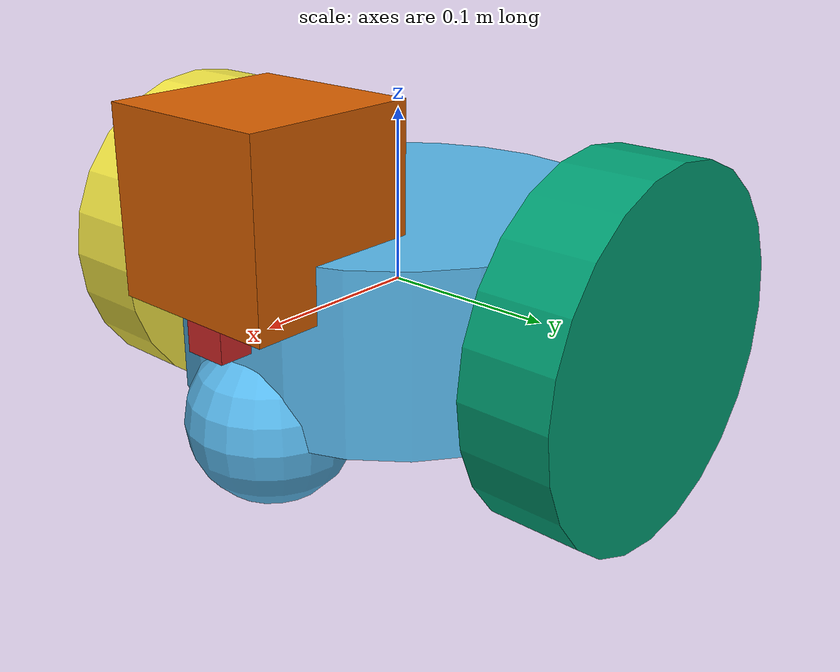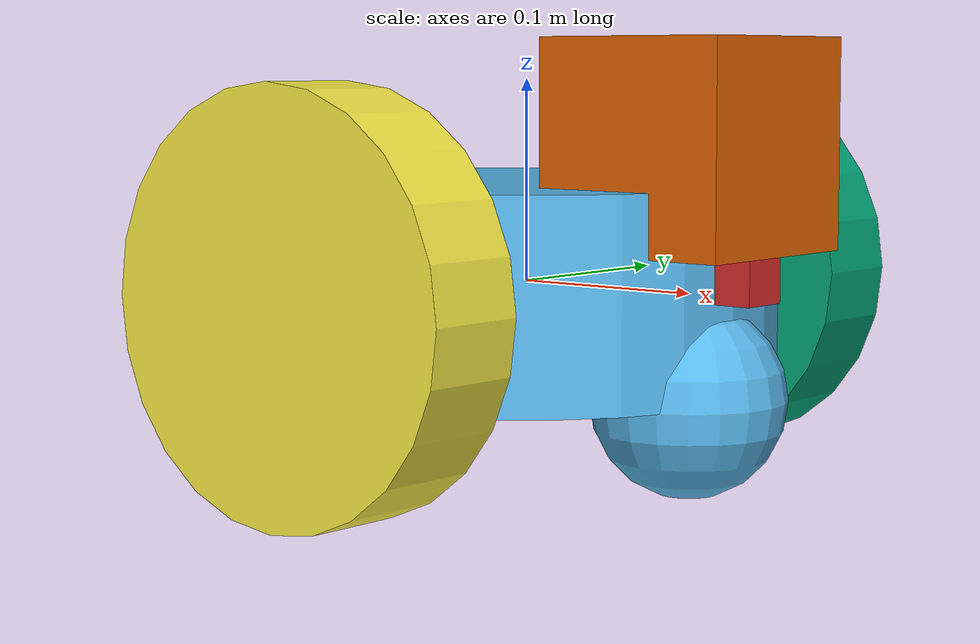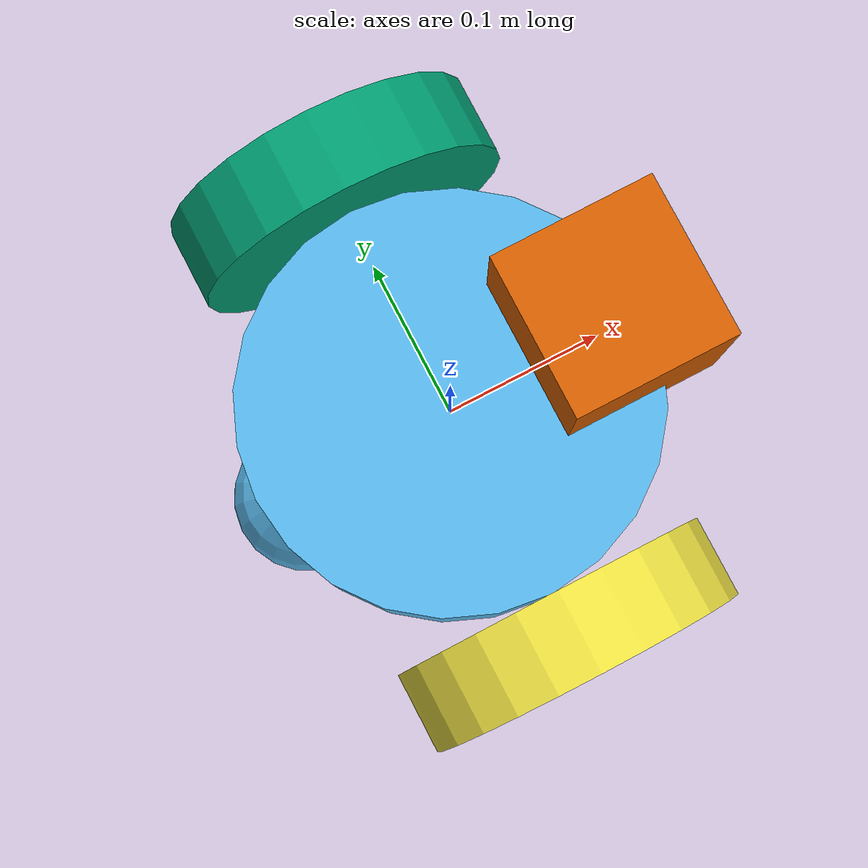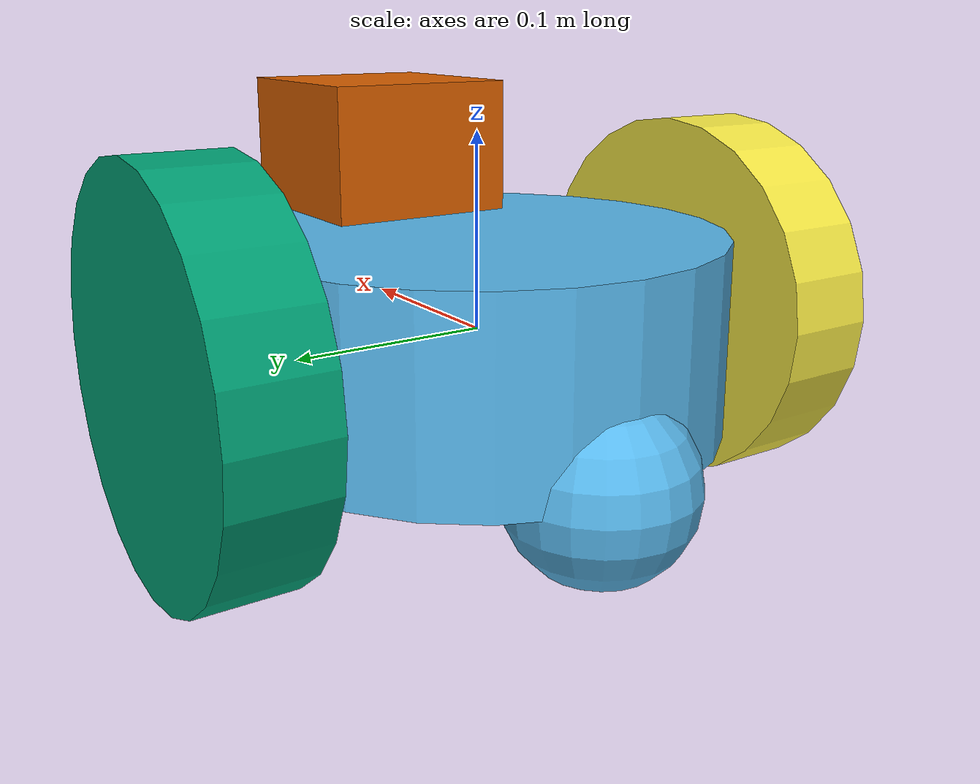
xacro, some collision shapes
<?xml version='1.0'?>

<robot name="udacity_bot" xmlns:xacro="http://www.ros.org/wiki/xacro">
  <xacro:include filename="$(find udacity_bot)/urdf/ramzy_bot.gazebo" />
  <link name="robot_footprint"></link>

  <joint name="robot_footprint_joint" type="fixed">
    <origin xyz="0 0 0" rpy="0 0 0" />
    <parent link="robot_footprint"/>
    <child link="chassis" />
  </joint>

  <link name='chassis'>
    <pose>0 0 0.1 0 0 0</pose>

    <inertial>
      <mass value="15.0"/>
      <origin xyz="0.0 0 0" rpy=" 0 0 0"/>
      <inertia
          ixx="0.1" ixy="0" ixz="0"
          iyy="0.1" iyz="0"
          izz="0.1"
      />
    </inertial>

    <collision name='collision'>
      <origin xyz="0 0 0" rpy=" 0 0 0"/>
      <geometry>
        <cylinder length="0.1" radius="0.125"/>
      </geometry>
    </collision>

    <visual name='chassis_visual'>
      <origin xyz="0 0 0" rpy=" 0 0 0"/>
      <geometry>
        <cylinder length="0.1" radius="0.125"/>
      </geometry>
    </visual>

    <collision name='back_caster_collision'>
      <origin xyz="-0.1 0 -0.05" rpy=" 0 0 0"/>
      <geometry>
        <sphere radius="0.047"/>
      </geometry>
    </collision>

    <visual name='back_caster_visual'>
      <origin xyz="-0.1 0 -0.05" rpy=" 0 0 0"/>
      <geometry>
        <sphere radius="0.047"/>
      </geometry>
    </visual>

    <collision name='front_caster_collision'>
      <origin xyz="0.1 0 -0.05" rpy=" 0 0 0"/>
      <geometry>
        <sphere radius="0.047"/>
      </geometry>
    </collision>

    <visual name='front_caster_visual'>
      <origin xyz="0.1 0 -0.05" rpy=" 0 0 0"/>
      <geometry>
        <sphere radius="0.047"/>
      </geometry>
    </visual>

  </link>
    <link name="left_wheel">
    <inertial>
      <mass value="5.0"/>
      <origin xyz="0.0 0 0" rpy=" 0 1.5707 1.5707"/>
      <inertia
          ixx="0.1" ixy="0" ixz="0"
          iyy="0.1" iyz="0"
          izz="0.1"
      />
    </inertial>

    <collision name='collision'>
      <origin xyz="0.0 0 0" rpy=" 0 1.5707 1.5707"/>
      <geometry>
        <cylinder radius="0.1" length="0.05"/>
      </geometry>
    </collision>

    <visual name='left_wheel_visual'>
      <origin xyz="0.0 0 0" rpy=" 0 1.5707 1.5707"/>
      <geometry>
        <cylinder radius="0.1" length="0.05"/>
      </geometry>
    </visual>
  </link>

  <joint type="continuous" name="left_wheel_hinge">
    <origin xyz="0 0.15 0" rpy="0 0 0"/>
    <child link="left_wheel"/>
    <parent link="chassis"/>
    <axis xyz="0 1 0" rpy="0 0 0"/>
    <limit effort="10000" velocity="1000"/>
    <dynamics damping="1.0" friction="1.0"/>
  </joint>

  <link name="right_wheel">
    <inertial>
      <mass value="5.0"/>
      <origin xyz="0.0 0 0" rpy=" 0 1.5707 1.5707"/>
      <inertia
          ixx="0.1" ixy="0" ixz="0"
          iyy="0.1" iyz="0"
          izz="0.1"
      />
    </inertial>

    <collision name='collision'>
      <origin xyz="0.0 0 0" rpy=" 0 1.5707 1.5707"/>
      <geometry>
        <cylinder radius="0.1" length="0.05"/>
      </geometry>
    </collision>

    <visual name='right_wheel_visual'>
      <origin xyz="0.0 0 0" rpy=" 0 1.5707 1.5707"/>
      <geometry>
        <cylinder radius="0.1" length="0.05"/>
      </geometry>
    </visual>
  </link>

  <joint type="continuous" name="right_wheel_hinge">
    <origin xyz="0 -0.15 0" rpy="0 0 0"/>
    <child link="right_wheel"/>
    <parent link="chassis"/>
    <axis xyz="0 1 0" rpy="0 0 0"/>
    <limit effort="10000" velocity="1000"/>
    <dynamics damping="1.0" friction="1.0"/>
  </joint>

  <link name="camera">
    <inertial>
      <origin xyz="-0.07 0.01 0" rpy="0 0 0" />
      <mass value="0.1" />
      <inertia
          ixx="1e-6" ixy="0" ixz="0"
          iyy="1e-6" iyz="0"
          izz="1e-6"
      />
    </inertial>
    <collision name="camera_collision">
        <origin xyz="-0.07 0 0.01" rpy="0 0 0" />
        <geometry>
        <box size= "0.025 0.025 0.025" />
        </geometry>
    </collision>
    <visual name="camera_visual">
        <origin xyz="-0.07 0 0.01" rpy="0 0 0" />
        <geometry>
        <box size= "0.025 0.025 0.025" />
        </geometry>
    </visual>
  </link>
  <joint name="camera_joint" type="fixed">
  <origin xyz="0.2 0 0" rpy="0 0 0"/>
    <child link="camera" />
    <parent link="chassis" />
    <axis xyz="0 1 0" rpy="0 0 0"/>
    <limit effort="10000" velocity="1000"/>
    <dynamics damping="1.0" friction="1.0"/>
  </joint>

    <link name="hokuyo">
    <inertial>
        <origin xyz="-0.05 0 -0.03" rpy="0 0 0" />
      <mass value="0.1" />
      <inertia
          ixx="1e-6" ixy="0" ixz="0"
          iyy="1e-6" iyz="0"
          izz="1e-6"
      />
    </inertial>
    <collision name="hokuyo_collision">
        <origin xyz="-0.05 0 -0.03" rpy="0 0 0" />
        <geometry>
        <box size= "0.1 0.1 0.1" />
        </geometry>
    </collision>
    <visual name="hokuyo_visual">
        <origin xyz="-0.05 0 -0.03" rpy="0 0 0" />
        <geometry>
        <mesh filename="package://udacity_bot/meshes/hokuyo.dae"/>
        </geometry>
    </visual>
  </link>
  <joint name="hokuyo_joint" type="fixed">
  <origin xyz="0.15 0 0.1" rpy="0 0 0"/>
    <child link="hokuyo" />
    <parent link="chassis" />
    <axis xyz="0 1 0" rpy="0 0 0"/>
    <limit effort="10000" velocity="1000"/>
    <dynamics damping="1.0" friction="1.0"/>
  </joint>
</robot>
